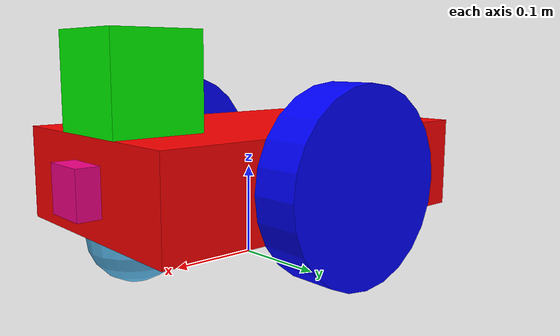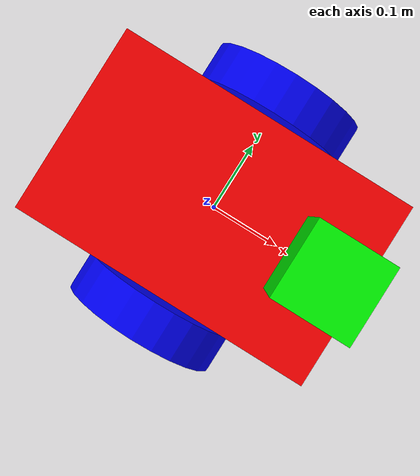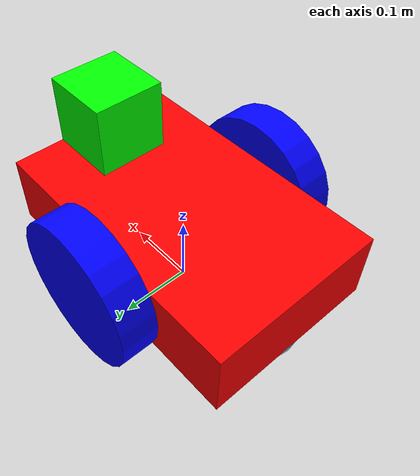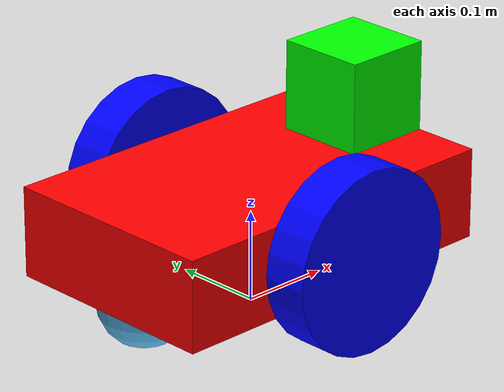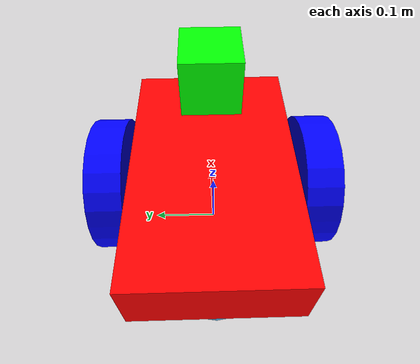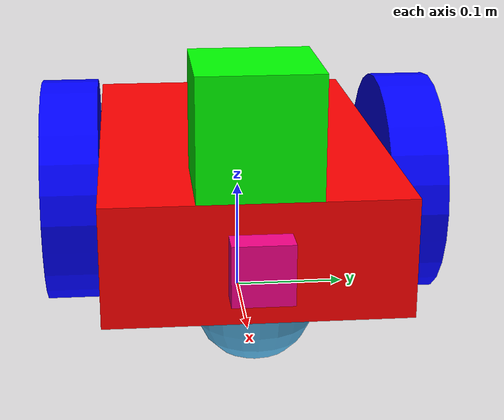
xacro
<?xml version='1.0'?>
<robot name="mobile_robot" xmlns:xacro="http://www.ros.org/wiki/xacro">

    <!-- LINKS -->

    <link name="robot_footprint"></link>

    <link name='chassis'>
        <pose>0 0 0.1 0 0 0</pose>

        <inertial>
            <mass value="15.0" />
            <origin xyz="0.0 0 0" rpy=" 0 0 0" />
            <inertia ixx="0.1" ixy="0" ixz="0" iyy="0.1" iyz="0" izz="0.1" />
        </inertial>

        <collision name='collision'>
            <origin xyz="0 0 0" rpy=" 0 0 0" />
            <geometry>
                <box size="0.4 0.25 0.1" />
            </geometry>
        </collision>

        <visual name='chassis_visual'>
            <origin xyz="0 0 0" rpy=" 0 0 0" />
            <geometry>
                <box size="0.4 0.25 0.1" />
            </geometry>
            <material name="red">
                <color rgba="1 0 0 1" />
            </material>
        </visual>

        <collision name='back_caster_collision'>
            <origin xyz="-0.15 0 -0.05" rpy=" 0 0 0" />
            <geometry>
                <sphere radius="0.0499" />
            </geometry>
        </collision>

        <visual name='back_caster_visual'>
            <origin xyz="-0.15 0 -0.05" rpy=" 0 0 0" />
            <geometry>
                <sphere radius="0.05" />
            </geometry>
        </visual>

        <collision name='front_caster_collision'>
            <origin xyz="0.15 0 -0.05" rpy=" 0 0 0" />
            <geometry>
                <sphere radius="0.0499" />
            </geometry>
        </collision>

        <visual name='front_caster_visual'>
            <origin xyz="0.15 0 -0.05" rpy=" 0 0 0" />
            <geometry>
                <sphere radius="0.05" />
            </geometry>

        </visual>
    </link>

    <link name="left_wheel">
        <visual>
            <origin xyz="0 0 0" rpy="0 1.5707 1.5707" />
            <geometry>
                <cylinder radius="0.1" length="0.05" />
            </geometry>
            <material name="blue">
                <color rgba="0 0 1 1" />
            </material>
        </visual>

        <collision>
            <origin xyz="0 0 0" rpy="0 1.5707 1.5707" />
            <geometry>
                <cylinder radius="0.1" length="0.05" />
            </geometry>
        </collision>

        <inertial>
            <mass value="5" />
            <origin xyz="0.0 0 0" rpy=" 0 0 0" />
            <inertia ixx="0.1" ixy="0" ixz="0" iyy="0.1" iyz="0" izz="0.1" />
        </inertial>
    </link>

    <link name="right_wheel">
        <visual>
            <origin xyz="0 0 0" rpy="0 1.5707 1.5707" />
            <geometry>
                <cylinder radius="0.1" length="0.05" />
            </geometry>
            <material name="blue">
                <color rgba="0 0 1 1" />
            </material>
        </visual>

        <collision>
            <origin xyz="0 0 0" rpy="0 1.5707 1.5707" />
            <geometry>
                <cylinder radius="0.1" length="0.05" />
            </geometry>
        </collision>

        <inertial>
            <mass value="5" />
            <origin xyz="0.0 0 0" rpy="0 0 0" />
            <inertia ixx="0.1" ixy="0" ixz="0" iyy="0.1" iyz="0" izz="0.1" />
        </inertial>
    </link>

    <link name="camera">
        <visual>
            <origin xyz="0 0 0" rpy="0 1.5707 0" />
            <geometry>
                <box size="0.05 0.05 0.05" />
            </geometry>
            <material name="magenta">
                <color rgba="0.96 0 0.53 1" />
            </material>
        </visual>

        <collision>
            <origin xyz="0 0 0" rpy="0 0 0" />
            <geometry>
                <box size="0.05 0.05 0.05" />
            </geometry>
        </collision>

        <inertial>
            <mass value="0.1" />
            <origin xyz="0.0 0 0" rpy=" 0 0 0" />
            <inertia ixx="1e-6" ixy="0" ixz="0" iyy="1e-6" iyz="0" izz="1e-6" />
        </inertial>
    </link>

    <link name="hokuyo">
        <visual>
            <origin xyz="0 0 0" rpy="0 0 0" />
            <geometry>
                <box size="0.1 0.1 0.1" />
            </geometry>
            <material name="green">
                <color rgba="0 1 0 1" />
            </material>
        </visual>

        <collision>
            <origin xyz="0 0 0" rpy="0 0 0" />
            <geometry>
                <box size="0.1 0.1 0.1" />
            </geometry>
        </collision>

        <inertial>
            <mass value="1e-5" />
            <origin xyz="0.0 0 0" rpy=" 0 0 0" />
            <inertia ixx="1e-6" ixy="0" ixz="0" iyy="1e-6" iyz="0" izz="1e-6" />
        </inertial>

    </link>

    <!-- JOINTS -->
    <joint name="robot_footprint_joint" type="fixed">
        <origin xyz="0 0 0.1" rpy="0 0 0" />
        <parent link="robot_footprint" />
        <child link="chassis" />
    </joint>

    <joint type="continuous" name="left_wheel_joint">
        <origin xyz="0 0.15 0" rpy="0 0 0" />
        <child link="left_wheel" />
        <parent link="chassis" />
        <axis xyz="0 1 0" rpy="0 0 0" />
        <limit effort="10000" velocity="1000" />
        <dynamics damping="1.0" friction="1.0" />
    </joint>

    <joint type="continuous" name="right_wheel_joint">
        <origin xyz="0 -0.15 0" rpy="0 0 0" />
        <child link="right_wheel" />
        <parent link="chassis" />
        <axis xyz="0 1 0" rpy="0 0 0" />
        <limit effort="10000" velocity="1000" />
        <dynamics damping="1.0" friction="1.0" />
    </joint>

    <joint type="fixed" name="camera_joint">
        <origin xyz="0.2 0 0" rpy="0 0 0" />
        <child link="camera" />
        <parent link="chassis" />
        <axis xyz="0 1 0" rpy="0 0 0" />
    </joint>

    <joint type="fixed" name="hokuyo_joint">
        <origin xyz="0.15 0 0.1" rpy="0 0 0" />
        <child link="hokuyo" />
        <parent link="chassis" />
    </joint>

</robot>
